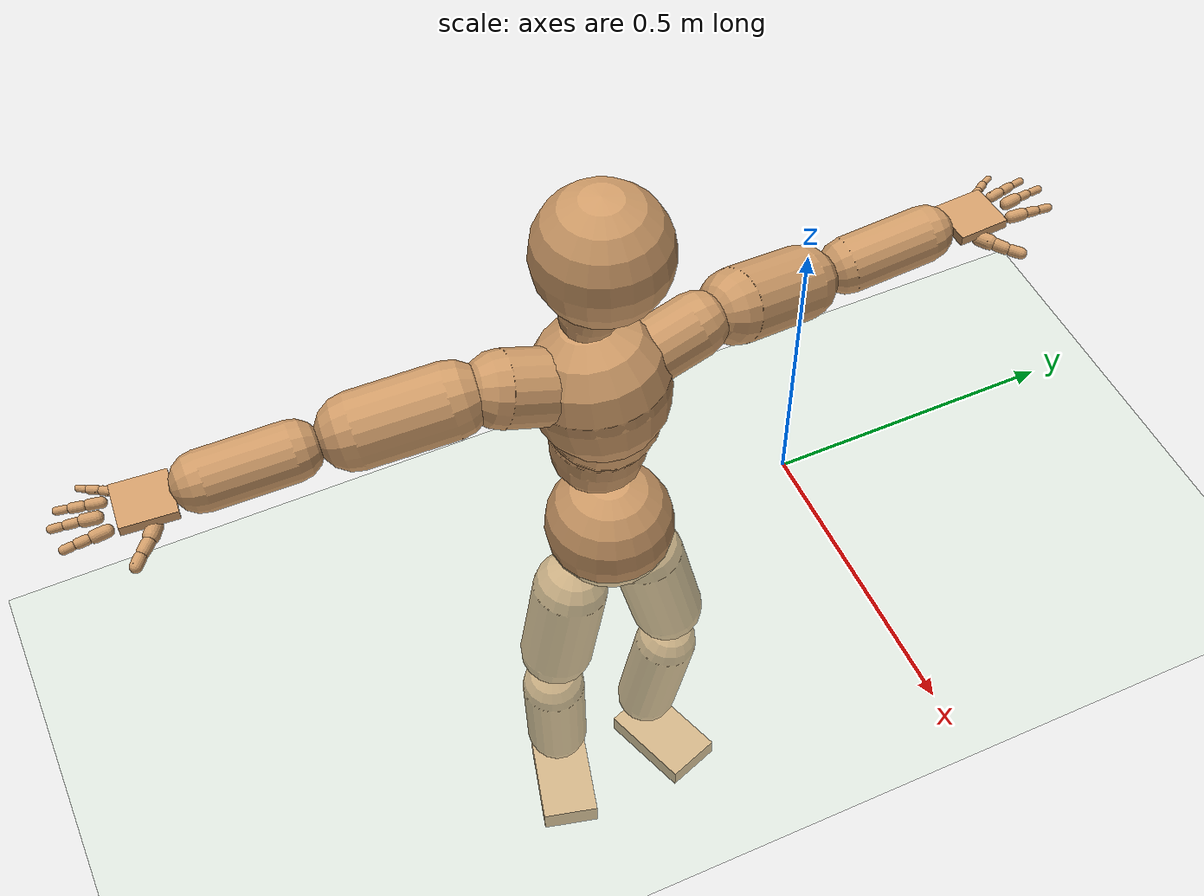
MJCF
<mujoco model="humanoid">
  <compiler coordinate="local" angle="radian"/>
  <default>
    <joint damping="0.0" armature="0.01" stiffness="0.0" limited="true"/>
    <geom conaffinity="1" condim="3" contype="7" margin="0.001" rgba="0.8 0.6 .4 1"/>
  </default>
  <asset>
    <texture type="skybox" builtin="gradient" rgb1=".4 .5 .6" rgb2="0 0 0" width="100" height="100"/>
    <texture builtin="flat" height="1278" mark="cross" markrgb="1 1 1" name="texgeom" random="0.01" rgb1="0.8 0.6 0.4" rgb2="0.8 0.6 0.4" type="cube" width="127"/>
    <texture builtin="checker" height="100" name="texplane" rgb1="0 0 0" rgb2="0.8 0.8 0.8" type="2d" width="100"/>
    <material name="MatPlane" reflectance="0.5" shininess="1" specular="1" texrepeat="60 60" texture="texplane"/>
    <material name="geom" texture="texgeom" texuniform="true"/>
  </asset>
  <worldbody>
    <light cutoff="100" diffuse="1 1 1" dir="-0 0 -1.3" directional="true" exponent="1" pos="0 0 1.3" specular=".1 .1 .1"/>
    <geom conaffinity="1" condim="3" name="floor" pos="0 0 0" rgba="0.8 0.9 0.8 1" size="100 100 .2" type="plane" material="MatPlane"/>
    <body name="Pelvis" pos="0.0017 -0.3273 0.0262">
      <freejoint name="Pelvis"/>
      <geom type="sphere" contype="1" conaffinity="1" density="500" size="0.1088" pos="0.0000 0.0000 0.0000" name="Pelvis"/>
      <body name="L_Hip" pos="-0.0142 0.06 -0.0852">
        <joint name="L_Hip_x" type="hinge" pos="0 0 0" axis="1 0 0" stiffness="800" damping="80" armature="0.02" range="-180.0000 180.0000"/>
        <joint name="L_Hip_y" type="hinge" pos="0 0 0" axis="0 1 0" stiffness="800" damping="80" armature="0.02" range="-180.0000 180.0000"/>
        <joint name="L_Hip_z" type="hinge" pos="0 0 0" axis="0 0 1" stiffness="800" damping="80" armature="0.02" range="-180.0000 180.0000"/>
        <geom type="capsule" contype="1" conaffinity="1" density="500" fromto="0.0014 0.0139 -0.0631 0.0055 0.0557 -0.2525" size="0.0652" name="L_Hip"/>
        <body name="L_Knee" pos="0.0069 0.0697 -0.3156">
          <joint name="L_Knee_x" type="hinge" pos="0 0 0" axis="1 0 0" stiffness="800" damping="80" armature="0.02" range="-180.0000 180.0000"/>
          <joint name="L_Knee_y" type="hinge" pos="0 0 0" axis="0 1 0" stiffness="800" damping="80" armature="0.02" range="-180.0000 180.0000"/>
          <joint name="L_Knee_z" type="hinge" pos="0 0 0" axis="0 0 1" stiffness="800" damping="80" armature="0.02" range="-180.0000 180.0000"/>
          <geom type="capsule" contype="1" conaffinity="1" density="500" fromto="-0.0073 -0.0094 -0.0702 -0.0293 -0.0376 -0.2807" size="0.0571" name="L_Knee"/>
          <body name="L_Ankle" pos="-0.0367 -0.047 -0.3508">
            <joint name="L_Ankle_x" type="hinge" pos="0 0 0" axis="1 0 0" stiffness="800" damping="80" armature="0.02" range="-180.0000 180.0000"/>
            <joint name="L_Ankle_y" type="hinge" pos="0 0 0" axis="0 1 0" stiffness="800" damping="80" armature="0.02" range="-180.0000 180.0000"/>
            <joint name="L_Ankle_z" type="hinge" pos="0 0 0" axis="0 0 1" stiffness="800" damping="80" armature="0.02" range="-180.0000 180.0000"/>
            <geom type="box" contype="1" conaffinity="1" density="500" pos="0.0618 0.0216 -0.0242" size="0.0882 0.0522 0.0195" quat="0.9859 0.0000 0.0000 0.1671" name="L_Ankle"/>
            <body name="L_Toe" pos="0.1236 0.0431 -0.0483">
              <joint name="L_Toe_x" type="hinge" pos="0 0 0" axis="1 0 0" stiffness="500" damping="50" armature="0.02" range="-180.0000 180.0000"/>
              <joint name="L_Toe_y" type="hinge" pos="0 0 0" axis="0 1 0" stiffness="500" damping="50" armature="0.02" range="-180.0000 180.0000"/>
              <joint name="L_Toe_z" type="hinge" pos="0 0 0" axis="0 0 1" stiffness="500" damping="50" armature="0.02" range="-180.0000 180.0000"/>
              <geom type="box" contype="1" conaffinity="1" density="500" pos="0.0000 0.0000 0.0269" size="0.0011 0.0025 0.0011" quat="0.9852 0.0000 0.0000 0.1716" name="L_Toe"/>
            </body>
          </body>
        </body>
      </body>
      <body name="R_Hip" pos="-0.0047 -0.0622 -0.0964">
        <joint name="R_Hip_x" type="hinge" pos="0 0 0" axis="1 0 0" stiffness="800" damping="80" armature="0.02" range="-180.0000 180.0000"/>
        <joint name="R_Hip_y" type="hinge" pos="0 0 0" axis="0 1 0" stiffness="800" damping="80" armature="0.02" range="-180.0000 180.0000"/>
        <joint name="R_Hip_z" type="hinge" pos="0 0 0" axis="0 0 1" stiffness="800" damping="80" armature="0.02" range="-180.0000 180.0000"/>
        <geom type="capsule" contype="1" conaffinity="1" density="500" fromto="-0.0005 -0.0104 -0.0602 -0.0022 -0.0418 -0.2408" size="0.0654" name="R_Hip"/>
        <body name="R_Knee" pos="-0.0027 -0.0522 -0.301">
          <joint name="R_Knee_x" type="hinge" pos="0 0 0" axis="1 0 0" stiffness="800" damping="80" armature="0.02" range="-180.0000 180.0000"/>
          <joint name="R_Knee_y" type="hinge" pos="0 0 0" axis="0 1 0" stiffness="800" damping="80" armature="0.02" range="-180.0000 180.0000"/>
          <joint name="R_Knee_z" type="hinge" pos="0 0 0" axis="0 0 1" stiffness="800" damping="80" armature="0.02" range="-180.0000 180.0000"/>
          <geom type="capsule" contype="1" conaffinity="1" density="500" fromto="-0.0074 0.0032 -0.0721 -0.0296 0.0130 -0.2885" size="0.0575" name="R_Knee"/>
          <body name="R_Ankle" pos="-0.037 0.0162 -0.3606">
            <joint name="R_Ankle_x" type="hinge" pos="0 0 0" axis="1 0 0" stiffness="800" damping="80" armature="0.02" range="-180.0000 180.0000"/>
            <joint name="R_Ankle_y" type="hinge" pos="0 0 0" axis="0 1 0" stiffness="800" damping="80" armature="0.02" range="-180.0000 180.0000"/>
            <joint name="R_Ankle_z" type="hinge" pos="0 0 0" axis="0 0 1" stiffness="800" damping="80" armature="0.02" range="-180.0000 180.0000"/>
            <geom type="box" contype="1" conaffinity="1" density="500" pos="0.0654 -0.0169 -0.0239" size="0.0882 0.0522 0.0231" quat="0.9920 0.0000 0.0000 -0.1264" name="R_Ankle"/>
            <body name="R_Toe" pos="0.1307 -0.0339 -0.0478">
              <joint name="R_Toe_x" type="hinge" pos="0 0 0" axis="1 0 0" stiffness="500" damping="50" armature="0.02" range="-180.0000 180.0000"/>
              <joint name="R_Toe_y" type="hinge" pos="0 0 0" axis="0 1 0" stiffness="500" damping="50" armature="0.02" range="-180.0000 180.0000"/>
              <joint name="R_Toe_z" type="hinge" pos="0 0 0" axis="0 0 1" stiffness="500" damping="50" armature="0.02" range="-180.0000 180.0000"/>
              <geom type="box" contype="1" conaffinity="1" density="500" pos="0.0000 0.0000 0.0231" size="0.001 0.0025 0.0011" quat="0.9931 0.0000 0.0000 -0.1175" name="R_Toe"/>
            </body>
          </body>
        </body>
      </body>
      <body name="Torso" pos="-0.0484 -0.0019 0.0963">
        <joint name="Torso_x" type="hinge" pos="0 0 0" axis="1 0 0" stiffness="1000" damping="100" armature="0.02" range="-180.0000 180.0000"/>
        <joint name="Torso_y" type="hinge" pos="0 0 0" axis="0 1 0" stiffness="1000" damping="100" armature="0.02" range="-180.0000 180.0000"/>
        <joint name="Torso_z" type="hinge" pos="0 0 0" axis="0 0 1" stiffness="1000" damping="100" armature="0.02" range="-180.0000 180.0000"/>
        <geom type="capsule" contype="1" conaffinity="1" density="500" fromto="-0.0006 0.0071 0.0758 -0.0004 0.0048 0.0505" size="0.0798" name="Torso"/>
        <body name="Spine" pos="-0.0009 0.0119 0.1263">
          <joint name="Spine_x" type="hinge" pos="0 0 0" axis="1 0 0" stiffness="1000" damping="100" armature="0.02" range="-180.0000 180.0000"/>
          <joint name="Spine_y" type="hinge" pos="0 0 0" axis="0 1 0" stiffness="1000" damping="100" armature="0.02" range="-180.0000 180.0000"/>
          <joint name="Spine_z" type="hinge" pos="0 0 0" axis="0 0 1" stiffness="1000" damping="100" armature="0.02" range="-180.0000 180.0000"/>
          <geom type="capsule" contype="1" conaffinity="1" density="500" fromto="0.0188 -0.0050 0.0304 0.0126 -0.0033 0.0202" size="0.0943" name="Spine"/>
          <body name="Chest" pos="0.0314 -0.0083 0.0506">
            <joint name="Chest_x" type="hinge" pos="0 0 0" axis="1 0 0" stiffness="1000" damping="100" armature="0.02" range="-180.0000 180.0000"/>
            <joint name="Chest_y" type="hinge" pos="0 0 0" axis="0 1 0" stiffness="1000" damping="100" armature="0.02" range="-180.0000 180.0000"/>
            <joint name="Chest_z" type="hinge" pos="0 0 0" axis="0 0 1" stiffness="1000" damping="100" armature="0.02" range="-180.0000 180.0000"/>
            <geom type="capsule" contype="1" conaffinity="1" density="500" fromto="-0.0110 -0.0043 0.0573 -0.0073 -0.0029 0.0382" size="0.1117" name="Chest"/>
            <body name="Neck" pos="-0.0373 -0.0128 0.1488">
              <joint name="Neck_x" type="hinge" pos="0 0 0" axis="1 0 0" stiffness="500" damping="50" armature="0.02" range="-180.0000 180.0000"/>
              <joint name="Neck_y" type="hinge" pos="0 0 0" axis="0 1 0" stiffness="500" damping="50" armature="0.02" range="-180.0000 180.0000"/>
              <joint name="Neck_z" type="hinge" pos="0 0 0" axis="0 0 1" stiffness="500" damping="50" armature="0.02" range="-180.0000 180.0000"/>
              <geom type="capsule" contype="1" conaffinity="1" density="500" fromto="0.0020 0.0050 0.0308 0.0082 0.0200 0.1233" size="0.0459" name="Neck"/>
              <body name="Head" pos="0.0102 0.025 0.1541">
                <joint name="Head_x" type="hinge" pos="0 0 0" axis="1 0 0" stiffness="500" damping="50" armature="0.02" range="-180.0000 180.0000"/>
                <joint name="Head_y" type="hinge" pos="0 0 0" axis="0 1 0" stiffness="500" damping="50" armature="0.02" range="-180.0000 180.0000"/>
                <joint name="Head_z" type="hinge" pos="0 0 0" axis="0 0 1" stiffness="500" damping="50" armature="0.02" range="-180.0000 180.0000"/>
                <geom type="sphere" contype="1" conaffinity="1" density="500" size="0.1069" pos="0.0000 0.0000 0.0000" name="Head"/>
              </body>
            </body>
            <body name="L_Thorax" pos="-0.0081 0.043 0.0685">
              <joint name="L_Thorax_x" type="hinge" pos="0 0 0" axis="1 0 0" stiffness="500" damping="50" armature="0.02" range="-180.0000 180.0000"/>
              <joint name="L_Thorax_y" type="hinge" pos="0 0 0" axis="0 1 0" stiffness="500" damping="50" armature="0.02" range="-180.0000 180.0000"/>
              <joint name="L_Thorax_z" type="hinge" pos="0 0 0" axis="0 0 1" stiffness="500" damping="50" armature="0.02" range="-180.0000 180.0000"/>
              <geom type="capsule" contype="1" conaffinity="1" density="500" fromto="-0.0016 0.0291 0.0082 -0.0064 0.1164 0.0328" size="0.0519" name="L_Thorax"/>
              <body name="L_Shoulder" pos="-0.008 0.1455 0.041">
                <joint name="L_Shoulder_x" type="hinge" pos="0 0 0" axis="1 0 0" stiffness="500" damping="50" armature="0.02" range="-180.0000 180.0000"/>
                <joint name="L_Shoulder_y" type="hinge" pos="0 0 0" axis="0 1 0" stiffness="500" damping="50" armature="0.02" range="-180.0000 180.0000"/>
                <joint name="L_Shoulder_z" type="hinge" pos="0 0 0" axis="0 0 1" stiffness="500" damping="50" armature="0.02" range="-180.0000 180.0000"/>
                <geom type="capsule" contype="1" conaffinity="1" density="500" fromto="-0.0114 0.0444 -0.0136 -0.0456 0.1778 -0.0544" size="0.0606" name="L_Shoulder"/>
                <body name="L_Elbow" pos="-0.057 0.2222 -0.068">
                  <joint name="L_Elbow_x" type="hinge" pos="0 0 0" axis="1 0 0" stiffness="500" damping="50" armature="0.02" range="-720.0000 720.0000"/>
                  <joint name="L_Elbow_y" type="hinge" pos="0 0 0" axis="0 1 0" stiffness="500" damping="50" armature="0.02" range="-720.0000 720.0000"/>
                  <joint name="L_Elbow_z" type="hinge" pos="0 0 0" axis="0 0 1" stiffness="500" damping="50" armature="0.02" range="-720.0000 720.0000"/>
                  <geom type="capsule" contype="1" conaffinity="1" density="500" fromto="0.0011 0.0463 0.0050 0.0045 0.1854 0.0200" size="0.0462" name="L_Elbow"/>
                  <body name="L_Wrist" pos="0.0057 0.2317 0.025">
                    <joint name="L_Wrist_x" type="hinge" pos="0 0 0" axis="1 0 0" stiffness="300" damping="30" armature="0.02" range="-180.0000 180.0000"/>
                    <joint name="L_Wrist_y" type="hinge" pos="0 0 0" axis="0 1 0" stiffness="300" damping="30" armature="0.02" range="-180.0000 180.0000"/>
                    <joint name="L_Wrist_z" type="hinge" pos="0 0 0" axis="0 0 1" stiffness="300" damping="30" armature="0.02" range="-180.0000 180.0000"/>
                    <geom type="box" contype="1" conaffinity="1" density="500" pos="-0.0024 0.0397 -0.0046" size="0.0434 0.0401 0.0085" quat="0.7277 0.0000 0.0000 -0.6859" name="L_Wrist"/>
                    <body name="L_Index1" pos="0.0234 0.0945 -0.0061">
                      <joint name="L_Index1_x" type="hinge" pos="0 0 0" axis="1 0 0" stiffness="100" damping="10" armature="0.02" range="-180.0000 180.0000"/>
                      <joint name="L_Index1_y" type="hinge" pos="0 0 0" axis="0 1 0" stiffness="100" damping="10" armature="0.02" range="-180.0000 180.0000"/>
                      <joint name="L_Index1_z" type="hinge" pos="0 0 0" axis="0 0 1" stiffness="100" damping="10" armature="0.02" range="-180.0000 180.0000"/>
                      <geom type="capsule" contype="1" conaffinity="1" density="500" fromto="0.0009 0.0064 0.0004 0.0035 0.0255 0.0014" size="0.01" name="L_Index1"/>
                      <body name="L_Index2" pos="0.0043 0.0319 0.0018">
                        <joint name="L_Index2_x" type="hinge" pos="0 0 0" axis="1 0 0" stiffness="100" damping="10" armature="0.02" range="-180.0000 180.0000"/>
                        <joint name="L_Index2_y" type="hinge" pos="0 0 0" axis="0 1 0" stiffness="100" damping="10" armature="0.02" range="-180.0000 180.0000"/>
                        <joint name="L_Index2_z" type="hinge" pos="0 0 0" axis="0 0 1" stiffness="100" damping="10" armature="0.02" range="-180.0000 180.0000"/>
                        <geom type="capsule" contype="1" conaffinity="1" density="500" fromto="-0.0000 0.0045 -0.0006 -0.0000 0.0180 -0.0022" size="0.0081" name="L_Index2"/>
                        <body name="L_Index3" pos="0 0.0225 -0.0028">
                          <joint name="L_Index3_x" type="hinge" pos="0 0 0" axis="1 0 0" stiffness="100" damping="10" armature="0.02" range="-180.0000 180.0000"/>
                          <joint name="L_Index3_y" type="hinge" pos="0 0 0" axis="0 1 0" stiffness="100" damping="10" armature="0.02" range="-180.0000 180.0000"/>
                          <joint name="L_Index3_z" type="hinge" pos="0 0 0" axis="0 0 1" stiffness="100" damping="10" armature="0.02" range="-180.0000 180.0000"/>
                          <geom type="capsule" contype="1" conaffinity="1" density="500" fromto="0.0004 0.0049 -0.0002 0.0016 0.0196 -0.0006" size="0.0069" name="L_Index3"/>
                        </body>
                      </body>
                    </body>
                    <body name="L_Middle1" pos="-0.0019 0.1018 -0.0031">
                      <joint name="L_Middle1_x" type="hinge" pos="0 0 0" axis="1 0 0" stiffness="100" damping="10" armature="0.02" range="-180.0000 180.0000"/>
                      <joint name="L_Middle1_y" type="hinge" pos="0 0 0" axis="0 1 0" stiffness="100" damping="10" armature="0.02" range="-180.0000 180.0000"/>
                      <joint name="L_Middle1_z" type="hinge" pos="0 0 0" axis="0 0 1" stiffness="100" damping="10" armature="0.02" range="-180.0000 180.0000"/>
                      <geom type="capsule" contype="1" conaffinity="1" density="500" fromto="-0.0008 0.0061 0.0001 -0.0033 0.0244 0.0004" size="0.0101" name="L_Middle1"/>
                      <body name="L_Middle2" pos="-0.0041 0.0305 0.0005">
                        <joint name="L_Middle2_x" type="hinge" pos="0 0 0" axis="1 0 0" stiffness="100" damping="10" armature="0.02" range="-180.0000 180.0000"/>
                        <joint name="L_Middle2_y" type="hinge" pos="0 0 0" axis="0 1 0" stiffness="100" damping="10" armature="0.02" range="-180.0000 180.0000"/>
                        <joint name="L_Middle2_z" type="hinge" pos="0 0 0" axis="0 0 1" stiffness="100" damping="10" armature="0.02" range="-180.0000 180.0000"/>
                        <geom type="capsule" contype="1" conaffinity="1" density="500" fromto="-0.0008 0.0046 -0.0005 -0.0033 0.0185 -0.0020" size="0.0073" name="L_Middle2"/>
                        <body name="L_Middle3" pos="-0.0041 0.0231 -0.0025">
                          <joint name="L_Middle3_x" type="hinge" pos="0 0 0" axis="1 0 0" stiffness="100" damping="10" armature="0.02" range="-180.0000 180.0000"/>
                          <joint name="L_Middle3_y" type="hinge" pos="0 0 0" axis="0 1 0" stiffness="100" damping="10" armature="0.02" range="-180.0000 180.0000"/>
                          <joint name="L_Middle3_z" type="hinge" pos="0 0 0" axis="0 0 1" stiffness="100" damping="10" armature="0.02" range="-180.0000 180.0000"/>
                          <geom type="capsule" contype="1" conaffinity="1" density="500" fromto="-0.0004 0.0050 -0.0001 -0.0017 0.0201 -0.0004" size="0.0064" name="L_Middle3"/>
                        </body>
                      </body>
                    </body>
                    <body name="L_Pinky1" pos="-0.046 0.0761 -0.0123">
                      <joint name="L_Pinky1_x" type="hinge" pos="0 0 0" axis="1 0 0" stiffness="100" damping="10" armature="0.02" range="-180.0000 180.0000"/>
                      <joint name="L_Pinky1_y" type="hinge" pos="0 0 0" axis="0 1 0" stiffness="100" damping="10" armature="0.02" range="-180.0000 180.0000"/>
                      <joint name="L_Pinky1_z" type="hinge" pos="0 0 0" axis="0 0 1" stiffness="100" damping="10" armature="0.02" range="-180.0000 180.0000"/>
                      <geom type="capsule" contype="1" conaffinity="1" density="500" fromto="-0.0025 0.0033 -0.0004 -0.0099 0.0131 -0.0016" size="0.0073" name="L_Pinky1"/>
                      <body name="L_Pinky2" pos="-0.0124 0.0163 -0.002">
                        <joint name="L_Pinky2_x" type="hinge" pos="0 0 0" axis="1 0 0" stiffness="100" damping="10" armature="0.02" range="-180.0000 180.0000"/>
                        <joint name="L_Pinky2_y" type="hinge" pos="0 0 0" axis="0 1 0" stiffness="100" damping="10" armature="0.02" range="-180.0000 180.0000"/>
                        <joint name="L_Pinky2_z" type="hinge" pos="0 0 0" axis="0 0 1" stiffness="100" damping="10" armature="0.02" range="-180.0000 180.0000"/>
                        <geom type="capsule" contype="1" conaffinity="1" density="500" fromto="-0.0022 0.0032 -0.0005 -0.0089 0.0128 -0.0020" size="0.007" name="L_Pinky2"/>
                        <body name="L_Pinky3" pos="-0.0112 0.0161 -0.0024">
                          <joint name="L_Pinky3_x" type="hinge" pos="0 0 0" axis="1 0 0" stiffness="100" damping="10" armature="0.02" range="-180.0000 180.0000"/>
                          <joint name="L_Pinky3_y" type="hinge" pos="0 0 0" axis="0 1 0" stiffness="100" damping="10" armature="0.02" range="-180.0000 180.0000"/>
                          <joint name="L_Pinky3_z" type="hinge" pos="0 0 0" axis="0 0 1" stiffness="100" damping="10" armature="0.02" range="-180.0000 180.0000"/>
                          <geom type="capsule" contype="1" conaffinity="1" density="500" fromto="-0.0018 0.0036 -0.0001 -0.0073 0.0144 -0.0004" size="0.0052" name="L_Pinky3"/>
                        </body>
                      </body>
                    </body>
                    <body name="L_Ring1" pos="-0.0277 0.0896 -0.0062">
                      <joint name="L_Ring1_x" type="hinge" pos="0 0 0" axis="1 0 0" stiffness="100" damping="10" armature="0.02" range="-180.0000 180.0000"/>
                      <joint name="L_Ring1_y" type="hinge" pos="0 0 0" axis="0 1 0" stiffness="100" damping="10" armature="0.02" range="-180.0000 180.0000"/>
                      <joint name="L_Ring1_z" type="hinge" pos="0 0 0" axis="0 0 1" stiffness="100" damping="10" armature="0.02" range="-180.0000 180.0000"/>
                      <geom type="capsule" contype="1" conaffinity="1" density="500" fromto="-0.0010 0.0057 0.0001 -0.0039 0.0228 0.0006" size="0.0086" name="L_Ring1"/>
                      <body name="L_Ring2" pos="-0.0048 0.0285 0.0007">
                        <joint name="L_Ring2_x" type="hinge" pos="0 0 0" axis="1 0 0" stiffness="100" damping="10" armature="0.02" range="-180.0000 180.0000"/>
                        <joint name="L_Ring2_y" type="hinge" pos="0 0 0" axis="0 1 0" stiffness="100" damping="10" armature="0.02" range="-180.0000 180.0000"/>
                        <joint name="L_Ring2_z" type="hinge" pos="0 0 0" axis="0 0 1" stiffness="100" damping="10" armature="0.02" range="-180.0000 180.0000"/>
                        <geom type="capsule" contype="1" conaffinity="1" density="500" fromto="-0.0013 0.0046 -0.0005 -0.0052 0.0184 -0.0020" size="0.0079" name="L_Ring2"/>
                        <body name="L_Ring3" pos="-0.0065 0.023 -0.0025">
                          <joint name="L_Ring3_x" type="hinge" pos="0 0 0" axis="1 0 0" stiffness="100" damping="10" armature="0.02" range="-180.0000 180.0000"/>
                          <joint name="L_Ring3_y" type="hinge" pos="0 0 0" axis="0 1 0" stiffness="100" damping="10" armature="0.02" range="-180.0000 180.0000"/>
                          <joint name="L_Ring3_z" type="hinge" pos="0 0 0" axis="0 0 1" stiffness="100" damping="10" armature="0.02" range="-180.0000 180.0000"/>
                          <geom type="capsule" contype="1" conaffinity="1" density="500" fromto="-0.0009 0.0050 -0.0001 -0.0036 0.0200 -0.0004" size="0.006" name="L_Ring3"/>
                        </body>
                      </body>
                    </body>
                    <body name="L_Thumb1" pos="0.0286 0.0347 -0.0186">
                      <joint name="L_Thumb1_x" type="hinge" pos="0 0 0" axis="1 0 0" stiffness="100" damping="10" armature="0.02" range="-180.0000 180.0000"/>
                      <joint name="L_Thumb1_y" type="hinge" pos="0 0 0" axis="0 1 0" stiffness="100" damping="10" armature="0.02" range="-180.0000 180.0000"/>
                      <joint name="L_Thumb1_z" type="hinge" pos="0 0 0" axis="0 0 1" stiffness="100" damping="10" armature="0.02" range="-180.0000 180.0000"/>
                      <geom type="capsule" contype="1" conaffinity="1" density="500" fromto="0.0054 0.0030 0.0005 0.0215 0.0122 0.0021" size="0.0127" name="L_Thumb1"/>
                      <body name="L_Thumb2" pos="0.0269 0.0152 0.0026">
                        <joint name="L_Thumb2_x" type="hinge" pos="0 0 0" axis="1 0 0" stiffness="100" damping="10" armature="0.02" range="-180.0000 180.0000"/>
                        <joint name="L_Thumb2_y" type="hinge" pos="0 0 0" axis="0 1 0" stiffness="100" damping="10" armature="0.02" range="-180.0000 180.0000"/>
                        <joint name="L_Thumb2_z" type="hinge" pos="0 0 0" axis="0 0 1" stiffness="100" damping="10" armature="0.02" range="-180.0000 180.0000"/>
                        <geom type="capsule" contype="1" conaffinity="1" density="500" fromto="0.0033 0.0037 -0.0010 0.0133 0.0147 -0.0041" size="0.0103" name="L_Thumb2"/>
                        <body name="L_Thumb3" pos="0.0167 0.0184 -0.0051">
                          <joint name="L_Thumb3_x" type="hinge" pos="0 0 0" axis="1 0 0" stiffness="100" damping="10" armature="0.02" range="-180.0000 180.0000"/>
                          <joint name="L_Thumb3_y" type="hinge" pos="0 0 0" axis="0 1 0" stiffness="100" damping="10" armature="0.02" range="-180.0000 180.0000"/>
                          <joint name="L_Thumb3_z" type="hinge" pos="0 0 0" axis="0 0 1" stiffness="100" damping="10" armature="0.02" range="-180.0000 180.0000"/>
                          <geom type="capsule" contype="1" conaffinity="1" density="500" fromto="0.0037 0.0041 -0.0006 0.0149 0.0163 -0.0025" size="0.0095" name="L_Thumb3"/>
                        </body>
                      </body>
                    </body>
                  </body>
                </body>
              </body>
            </body>
            <body name="R_Thorax" pos="-0.0096 -0.0517 0.0691">
              <joint name="R_Thorax_x" type="hinge" pos="0 0 0" axis="1 0 0" stiffness="500" damping="50" armature="0.02" range="-180.0000 180.0000"/>
              <joint name="R_Thorax_y" type="hinge" pos="0 0 0" axis="0 1 0" stiffness="500" damping="50" armature="0.02" range="-180.0000 180.0000"/>
              <joint name="R_Thorax_z" type="hinge" pos="0 0 0" axis="0 0 1" stiffness="500" damping="50" armature="0.02" range="-180.0000 180.0000"/>
              <geom type="capsule" contype="1" conaffinity="1" density="500" fromto="-0.0026 -0.0266 0.0081 -0.0102 -0.1063 0.0323" size="0.0608" name="R_Thorax"/>
              <body name="R_Shoulder" pos="-0.0128 -0.1329 0.0404">
                <joint name="R_Shoulder_x" type="hinge" pos="0 0 0" axis="1 0 0" stiffness="500" damping="50" armature="0.02" range="-180.0000 180.0000"/>
                <joint name="R_Shoulder_y" type="hinge" pos="0 0 0" axis="0 1 0" stiffness="500" damping="50" armature="0.02" range="-180.0000 180.0000"/>
                <joint name="R_Shoulder_z" type="hinge" pos="0 0 0" axis="0 0 1" stiffness="500" damping="50" armature="0.02" range="-180.0000 180.0000"/>
                <geom type="capsule" contype="1" conaffinity="1" density="500" fromto="-0.0072 -0.0478 -0.0069 -0.0289 -0.1910 -0.0278" size="0.0601" name="R_Shoulder"/>
                <body name="R_Elbow" pos="-0.0361 -0.2388 -0.0347">
                  <joint name="R_Elbow_x" type="hinge" pos="0 0 0" axis="1 0 0" stiffness="500" damping="50" armature="0.02" range="-720.0000 720.0000"/>
                  <joint name="R_Elbow_y" type="hinge" pos="0 0 0" axis="0 1 0" stiffness="500" damping="50" armature="0.02" range="-720.0000 720.0000"/>
                  <joint name="R_Elbow_z" type="hinge" pos="0 0 0" axis="0 0 1" stiffness="500" damping="50" armature="0.02" range="-720.0000 720.0000"/>
                  <geom type="capsule" contype="1" conaffinity="1" density="500" fromto="-0.0016 -0.0453 -0.0009 -0.0063 -0.1813 -0.0035" size="0.047" name="R_Elbow"/>
                  <body name="R_Wrist" pos="-0.0078 -0.2266 -0.0043">
                    <joint name="R_Wrist_x" type="hinge" pos="0 0 0" axis="1 0 0" stiffness="300" damping="30" armature="0.02" range="-180.0000 180.0000"/>
                    <joint name="R_Wrist_y" type="hinge" pos="0 0 0" axis="0 1 0" stiffness="300" damping="30" armature="0.02" range="-180.0000 180.0000"/>
                    <joint name="R_Wrist_z" type="hinge" pos="0 0 0" axis="0 0 1" stiffness="300" damping="30" armature="0.02" range="-180.0000 180.0000"/>
                    <geom type="box" contype="1" conaffinity="1" density="500" pos="-0.0029 -0.0394 -0.0066" size="0.0434 0.0412 0.0086" quat="0.7328 0.0000 0.0000 0.6805" name="R_Wrist"/>
                    <body name="R_Index1" pos="0.0223 -0.0941 -0.01">
                      <joint name="R_Index1_x" type="hinge" pos="0 0 0" axis="1 0 0" stiffness="100" damping="10" armature="0.02" range="-180.0000 180.0000"/>
                      <joint name="R_Index1_y" type="hinge" pos="0 0 0" axis="0 1 0" stiffness="100" damping="10" armature="0.02" range="-180.0000 180.0000"/>
                      <joint name="R_Index1_z" type="hinge" pos="0 0 0" axis="0 0 1" stiffness="100" damping="10" armature="0.02" range="-180.0000 180.0000"/>
                      <geom type="capsule" contype="1" conaffinity="1" density="500" fromto="0.0009 -0.0064 0.0004 0.0035 -0.0255 0.0014" size="0.01" name="R_Index1"/>
                      <body name="R_Index2" pos="0.0043 -0.0319 0.0018">
                        <joint name="R_Index2_x" type="hinge" pos="0 0 0" axis="1 0 0" stiffness="100" damping="10" armature="0.02" range="-180.0000 180.0000"/>
                        <joint name="R_Index2_y" type="hinge" pos="0 0 0" axis="0 1 0" stiffness="100" damping="10" armature="0.02" range="-180.0000 180.0000"/>
                        <joint name="R_Index2_z" type="hinge" pos="0 0 0" axis="0 0 1" stiffness="100" damping="10" armature="0.02" range="-180.0000 180.0000"/>
                        <geom type="capsule" contype="1" conaffinity="1" density="500" fromto="-0.0000 -0.0045 -0.0006 -0.0000 -0.0180 -0.0022" size="0.0081" name="R_Index2"/>
                        <body name="R_Index3" pos="0 -0.0225 -0.0028">
                          <joint name="R_Index3_x" type="hinge" pos="0 0 0" axis="1 0 0" stiffness="100" damping="10" armature="0.02" range="-180.0000 180.0000"/>
                          <joint name="R_Index3_y" type="hinge" pos="0 0 0" axis="0 1 0" stiffness="100" damping="10" armature="0.02" range="-180.0000 180.0000"/>
                          <joint name="R_Index3_z" type="hinge" pos="0 0 0" axis="0 0 1" stiffness="100" damping="10" armature="0.02" range="-180.0000 180.0000"/>
                          <geom type="capsule" contype="1" conaffinity="1" density="500" fromto="0.0004 -0.0041 -0.0002 0.0016 -0.0164 -0.0006" size="0.0072" name="R_Index3"/>
                        </body>
                      </body>
                    </body>
                    <body name="R_Middle1" pos="-0.003 -0.1014 -0.007">
                      <joint name="R_Middle1_x" type="hinge" pos="0 0 0" axis="1 0 0" stiffness="100" damping="10" armature="0.02" range="-180.0000 180.0000"/>
                      <joint name="R_Middle1_y" type="hinge" pos="0 0 0" axis="0 1 0" stiffness="100" damping="10" armature="0.02" range="-180.0000 180.0000"/>
                      <joint name="R_Middle1_z" type="hinge" pos="0 0 0" axis="0 0 1" stiffness="100" damping="10" armature="0.02" range="-180.0000 180.0000"/>
                      <geom type="capsule" contype="1" conaffinity="1" density="500" fromto="-0.0008 -0.0061 0.0001 -0.0033 -0.0244 0.0004" size="0.0101" name="R_Middle1"/>
                      <body name="R_Middle2" pos="-0.0041 -0.0305 0.0005">
                        <joint name="R_Middle2_x" type="hinge" pos="0 0 0" axis="1 0 0" stiffness="100" damping="10" armature="0.02" range="-180.0000 180.0000"/>
                        <joint name="R_Middle2_y" type="hinge" pos="0 0 0" axis="0 1 0" stiffness="100" damping="10" armature="0.02" range="-180.0000 180.0000"/>
                        <joint name="R_Middle2_z" type="hinge" pos="0 0 0" axis="0 0 1" stiffness="100" damping="10" armature="0.02" range="-180.0000 180.0000"/>
                        <geom type="capsule" contype="1" conaffinity="1" density="500" fromto="-0.0008 -0.0046 -0.0005 -0.0033 -0.0185 -0.0020" size="0.0074" name="R_Middle2"/>
                        <body name="R_Middle3" pos="-0.0041 -0.0231 -0.0025">
                          <joint name="R_Middle3_x" type="hinge" pos="0 0 0" axis="1 0 0" stiffness="100" damping="10" armature="0.02" range="-180.0000 180.0000"/>
                          <joint name="R_Middle3_y" type="hinge" pos="0 0 0" axis="0 1 0" stiffness="100" damping="10" armature="0.02" range="-180.0000 180.0000"/>
                          <joint name="R_Middle3_z" type="hinge" pos="0 0 0" axis="0 0 1" stiffness="100" damping="10" armature="0.02" range="-180.0000 180.0000"/>
                          <geom type="capsule" contype="1" conaffinity="1" density="500" fromto="-0.0004 -0.0042 -0.0001 -0.0017 -0.0169 -0.0004" size="0.0067" name="R_Middle3"/>
                        </body>
                      </body>
                    </body>
                    <body name="R_Pinky1" pos="-0.0471 -0.0756 -0.0162">
                      <joint name="R_Pinky1_x" type="hinge" pos="0 0 0" axis="1 0 0" stiffness="100" damping="10" armature="0.02" range="-180.0000 180.0000"/>
                      <joint name="R_Pinky1_y" type="hinge" pos="0 0 0" axis="0 1 0" stiffness="100" damping="10" armature="0.02" range="-180.0000 180.0000"/>
                      <joint name="R_Pinky1_z" type="hinge" pos="0 0 0" axis="0 0 1" stiffness="100" damping="10" armature="0.02" range="-180.0000 180.0000"/>
                      <geom type="capsule" contype="1" conaffinity="1" density="500" fromto="-0.0025 -0.0033 -0.0004 -0.0099 -0.0131 -0.0016" size="0.0073" name="R_Pinky1"/>
                      <body name="R_Pinky2" pos="-0.0124 -0.0163 -0.002">
                        <joint name="R_Pinky2_x" type="hinge" pos="0 0 0" axis="1 0 0" stiffness="100" damping="10" armature="0.02" range="-180.0000 180.0000"/>
                        <joint name="R_Pinky2_y" type="hinge" pos="0 0 0" axis="0 1 0" stiffness="100" damping="10" armature="0.02" range="-180.0000 180.0000"/>
                        <joint name="R_Pinky2_z" type="hinge" pos="0 0 0" axis="0 0 1" stiffness="100" damping="10" armature="0.02" range="-180.0000 180.0000"/>
                        <geom type="capsule" contype="1" conaffinity="1" density="500" fromto="-0.0022 -0.0032 -0.0005 -0.0089 -0.0128 -0.0020" size="0.007" name="R_Pinky2"/>
                        <body name="R_Pinky3" pos="-0.0112 -0.0161 -0.0024">
                          <joint name="R_Pinky3_x" type="hinge" pos="0 0 0" axis="1 0 0" stiffness="100" damping="10" armature="0.02" range="-180.0000 180.0000"/>
                          <joint name="R_Pinky3_y" type="hinge" pos="0 0 0" axis="0 1 0" stiffness="100" damping="10" armature="0.02" range="-180.0000 180.0000"/>
                          <joint name="R_Pinky3_z" type="hinge" pos="0 0 0" axis="0 0 1" stiffness="100" damping="10" armature="0.02" range="-180.0000 180.0000"/>
                          <geom type="capsule" contype="1" conaffinity="1" density="500" fromto="-0.0018 -0.0028 -0.0001 -0.0073 -0.0112 -0.0004" size="0.0054" name="R_Pinky3"/>
                        </body>
                      </body>
                    </body>
                    <body name="R_Ring1" pos="-0.0288 -0.0891 -0.01">
                      <joint name="R_Ring1_x" type="hinge" pos="0 0 0" axis="1 0 0" stiffness="100" damping="10" armature="0.02" range="-180.0000 180.0000"/>
                      <joint name="R_Ring1_y" type="hinge" pos="0 0 0" axis="0 1 0" stiffness="100" damping="10" armature="0.02" range="-180.0000 180.0000"/>
                      <joint name="R_Ring1_z" type="hinge" pos="0 0 0" axis="0 0 1" stiffness="100" damping="10" armature="0.02" range="-180.0000 180.0000"/>
                      <geom type="capsule" contype="1" conaffinity="1" density="500" fromto="-0.0010 -0.0057 0.0001 -0.0039 -0.0228 0.0006" size="0.0086" name="R_Ring1"/>
                      <body name="R_Ring2" pos="-0.0048 -0.0285 0.0007">
                        <joint name="R_Ring2_x" type="hinge" pos="0 0 0" axis="1 0 0" stiffness="100" damping="10" armature="0.02" range="-180.0000 180.0000"/>
                        <joint name="R_Ring2_y" type="hinge" pos="0 0 0" axis="0 1 0" stiffness="100" damping="10" armature="0.02" range="-180.0000 180.0000"/>
                        <joint name="R_Ring2_z" type="hinge" pos="0 0 0" axis="0 0 1" stiffness="100" damping="10" armature="0.02" range="-180.0000 180.0000"/>
                        <geom type="capsule" contype="1" conaffinity="1" density="500" fromto="-0.0013 -0.0046 -0.0005 -0.0052 -0.0184 -0.0020" size="0.0079" name="R_Ring2"/>
                        <body name="R_Ring3" pos="-0.0065 -0.023 -0.0025">
                          <joint name="R_Ring3_x" type="hinge" pos="0 0 0" axis="1 0 0" stiffness="100" damping="10" armature="0.02" range="-180.0000 180.0000"/>
                          <joint name="R_Ring3_y" type="hinge" pos="0 0 0" axis="0 1 0" stiffness="100" damping="10" armature="0.02" range="-180.0000 180.0000"/>
                          <joint name="R_Ring3_z" type="hinge" pos="0 0 0" axis="0 0 1" stiffness="100" damping="10" armature="0.02" range="-180.0000 180.0000"/>
                          <geom type="capsule" contype="1" conaffinity="1" density="500" fromto="-0.0009 -0.0042 -0.0001 -0.0036 -0.0168 -0.0004" size="0.0063" name="R_Ring3"/>
                        </body>
                      </body>
                    </body>
                    <body name="R_Thumb1" pos="0.0275 -0.0342 -0.0225">
                      <joint name="R_Thumb1_x" type="hinge" pos="0 0 0" axis="1 0 0" stiffness="100" damping="10" armature="0.02" range="-180.0000 180.0000"/>
                      <joint name="R_Thumb1_y" type="hinge" pos="0 0 0" axis="0 1 0" stiffness="100" damping="10" armature="0.02" range="-180.0000 180.0000"/>
                      <joint name="R_Thumb1_z" type="hinge" pos="0 0 0" axis="0 0 1" stiffness="100" damping="10" armature="0.02" range="-180.0000 180.0000"/>
                      <geom type="capsule" contype="1" conaffinity="1" density="500" fromto="0.0054 -0.0030 0.0005 0.0215 -0.0122 0.0021" size="0.0127" name="R_Thumb1"/>
                      <body name="R_Thumb2" pos="0.0269 -0.0152 0.0026">
                        <joint name="R_Thumb2_x" type="hinge" pos="0 0 0" axis="1 0 0" stiffness="100" damping="10" armature="0.02" range="-180.0000 180.0000"/>
                        <joint name="R_Thumb2_y" type="hinge" pos="0 0 0" axis="0 1 0" stiffness="100" damping="10" armature="0.02" range="-180.0000 180.0000"/>
                        <joint name="R_Thumb2_z" type="hinge" pos="0 0 0" axis="0 0 1" stiffness="100" damping="10" armature="0.02" range="-180.0000 180.0000"/>
                        <geom type="capsule" contype="1" conaffinity="1" density="500" fromto="0.0033 -0.0037 -0.0010 0.0133 -0.0147 -0.0041" size="0.0103" name="R_Thumb2"/>
                        <body name="R_Thumb3" pos="0.0167 -0.0184 -0.0051">
                          <joint name="R_Thumb3_x" type="hinge" pos="0 0 0" axis="1 0 0" stiffness="100" damping="10" armature="0.02" range="-180.0000 180.0000"/>
                          <joint name="R_Thumb3_y" type="hinge" pos="0 0 0" axis="0 1 0" stiffness="100" damping="10" armature="0.02" range="-180.0000 180.0000"/>
                          <joint name="R_Thumb3_z" type="hinge" pos="0 0 0" axis="0 0 1" stiffness="100" damping="10" armature="0.02" range="-180.0000 180.0000"/>
                          <geom type="capsule" contype="1" conaffinity="1" density="500" fromto="0.0037 -0.0033 -0.0006 0.0149 -0.0131 -0.0025" size="0.0097" name="R_Thumb3"/>
                        </body>
                      </body>
                    </body>
                  </body>
                </body>
              </body>
            </body>
          </body>
        </body>
      </body>
    </body>
  </worldbody>
  <actuator>
    <motor name="L_Hip_x" joint="L_Hip_x" gear="500"/>
    <motor name="L_Hip_y" joint="L_Hip_y" gear="500"/>
    <motor name="L_Hip_z" joint="L_Hip_z" gear="500"/>
    <motor name="L_Knee_x" joint="L_Knee_x" gear="500"/>
    <motor name="L_Knee_y" joint="L_Knee_y" gear="500"/>
    <motor name="L_Knee_z" joint="L_Knee_z" gear="500"/>
    <motor name="L_Ankle_x" joint="L_Ankle_x" gear="500"/>
    <motor name="L_Ankle_y" joint="L_Ankle_y" gear="500"/>
    <motor name="L_Ankle_z" joint="L_Ankle_z" gear="500"/>
    <motor name="L_Toe_x" joint="L_Toe_x" gear="500"/>
    <motor name="L_Toe_y" joint="L_Toe_y" gear="500"/>
    <motor name="L_Toe_z" joint="L_Toe_z" gear="500"/>
    <motor name="R_Hip_x" joint="R_Hip_x" gear="500"/>
    <motor name="R_Hip_y" joint="R_Hip_y" gear="500"/>
    <motor name="R_Hip_z" joint="R_Hip_z" gear="500"/>
    <motor name="R_Knee_x" joint="R_Knee_x" gear="500"/>
    <motor name="R_Knee_y" joint="R_Knee_y" gear="500"/>
    <motor name="R_Knee_z" joint="R_Knee_z" gear="500"/>
    <motor name="R_Ankle_x" joint="R_Ankle_x" gear="500"/>
    <motor name="R_Ankle_y" joint="R_Ankle_y" gear="500"/>
    <motor name="R_Ankle_z" joint="R_Ankle_z" gear="500"/>
    <motor name="R_Toe_x" joint="R_Toe_x" gear="500"/>
    <motor name="R_Toe_y" joint="R_Toe_y" gear="500"/>
    <motor name="R_Toe_z" joint="R_Toe_z" gear="500"/>
    <motor name="Torso_x" joint="Torso_x" gear="500"/>
    <motor name="Torso_y" joint="Torso_y" gear="500"/>
    <motor name="Torso_z" joint="Torso_z" gear="500"/>
    <motor name="Spine_x" joint="Spine_x" gear="500"/>
    <motor name="Spine_y" joint="Spine_y" gear="500"/>
    <motor name="Spine_z" joint="Spine_z" gear="500"/>
    <motor name="Chest_x" joint="Chest_x" gear="500"/>
    <motor name="Chest_y" joint="Chest_y" gear="500"/>
    <motor name="Chest_z" joint="Chest_z" gear="500"/>
    <motor name="Neck_x" joint="Neck_x" gear="500"/>
    <motor name="Neck_y" joint="Neck_y" gear="500"/>
    <motor name="Neck_z" joint="Neck_z" gear="500"/>
    <motor name="Head_x" joint="Head_x" gear="500"/>
    <motor name="Head_y" joint="Head_y" gear="500"/>
    <motor name="Head_z" joint="Head_z" gear="500"/>
    <motor name="L_Thorax_x" joint="L_Thorax_x" gear="500"/>
    <motor name="L_Thorax_y" joint="L_Thorax_y" gear="500"/>
    <motor name="L_Thorax_z" joint="L_Thorax_z" gear="500"/>
    <motor name="L_Shoulder_x" joint="L_Shoulder_x" gear="500"/>
    <motor name="L_Shoulder_y" joint="L_Shoulder_y" gear="500"/>
    <motor name="L_Shoulder_z" joint="L_Shoulder_z" gear="500"/>
    <motor name="L_Elbow_x" joint="L_Elbow_x" gear="500"/>
    <motor name="L_Elbow_y" joint="L_Elbow_y" gear="500"/>
    <motor name="L_Elbow_z" joint="L_Elbow_z" gear="500"/>
    <motor name="L_Wrist_x" joint="L_Wrist_x" gear="500"/>
    <motor name="L_Wrist_y" joint="L_Wrist_y" gear="500"/>
    <motor name="L_Wrist_z" joint="L_Wrist_z" gear="500"/>
    <motor name="L_Index1_x" joint="L_Index1_x" gear="500"/>
    <motor name="L_Index1_y" joint="L_Index1_y" gear="500"/>
    <motor name="L_Index1_z" joint="L_Index1_z" gear="500"/>
    <motor name="L_Index2_x" joint="L_Index2_x" gear="500"/>
    <motor name="L_Index2_y" joint="L_Index2_y" gear="500"/>
    <motor name="L_Index2_z" joint="L_Index2_z" gear="500"/>
    <motor name="L_Index3_x" joint="L_Index3_x" gear="500"/>
    <motor name="L_Index3_y" joint="L_Index3_y" gear="500"/>
    <motor name="L_Index3_z" joint="L_Index3_z" gear="500"/>
    <motor name="L_Middle1_x" joint="L_Middle1_x" gear="500"/>
    <motor name="L_Middle1_y" joint="L_Middle1_y" gear="500"/>
    <motor name="L_Middle1_z" joint="L_Middle1_z" gear="500"/>
    <motor name="L_Middle2_x" joint="L_Middle2_x" gear="500"/>
    <motor name="L_Middle2_y" joint="L_Middle2_y" gear="500"/>
    <motor name="L_Middle2_z" joint="L_Middle2_z" gear="500"/>
    <motor name="L_Middle3_x" joint="L_Middle3_x" gear="500"/>
    <motor name="L_Middle3_y" joint="L_Middle3_y" gear="500"/>
    <motor name="L_Middle3_z" joint="L_Middle3_z" gear="500"/>
    <motor name="L_Pinky1_x" joint="L_Pinky1_x" gear="500"/>
    <motor name="L_Pinky1_y" joint="L_Pinky1_y" gear="500"/>
    <motor name="L_Pinky1_z" joint="L_Pinky1_z" gear="500"/>
    <motor name="L_Pinky2_x" joint="L_Pinky2_x" gear="500"/>
    <motor name="L_Pinky2_y" joint="L_Pinky2_y" gear="500"/>
    <motor name="L_Pinky2_z" joint="L_Pinky2_z" gear="500"/>
    <motor name="L_Pinky3_x" joint="L_Pinky3_x" gear="500"/>
    <motor name="L_Pinky3_y" joint="L_Pinky3_y" gear="500"/>
    <motor name="L_Pinky3_z" joint="L_Pinky3_z" gear="500"/>
    <motor name="L_Ring1_x" joint="L_Ring1_x" gear="500"/>
    <motor name="L_Ring1_y" joint="L_Ring1_y" gear="500"/>
    <motor name="L_Ring1_z" joint="L_Ring1_z" gear="500"/>
    <motor name="L_Ring2_x" joint="L_Ring2_x" gear="500"/>
    <motor name="L_Ring2_y" joint="L_Ring2_y" gear="500"/>
    <motor name="L_Ring2_z" joint="L_Ring2_z" gear="500"/>
    <motor name="L_Ring3_x" joint="L_Ring3_x" gear="500"/>
    <motor name="L_Ring3_y" joint="L_Ring3_y" gear="500"/>
    <motor name="L_Ring3_z" joint="L_Ring3_z" gear="500"/>
    <motor name="L_Thumb1_x" joint="L_Thumb1_x" gear="500"/>
    <motor name="L_Thumb1_y" joint="L_Thumb1_y" gear="500"/>
    <motor name="L_Thumb1_z" joint="L_Thumb1_z" gear="500"/>
    <motor name="L_Thumb2_x" joint="L_Thumb2_x" gear="500"/>
    <motor name="L_Thumb2_y" joint="L_Thumb2_y" gear="500"/>
    <motor name="L_Thumb2_z" joint="L_Thumb2_z" gear="500"/>
    <motor name="L_Thumb3_x" joint="L_Thumb3_x" gear="500"/>
    <motor name="L_Thumb3_y" joint="L_Thumb3_y" gear="500"/>
    <motor name="L_Thumb3_z" joint="L_Thumb3_z" gear="500"/>
    <motor name="R_Thorax_x" joint="R_Thorax_x" gear="500"/>
    <motor name="R_Thorax_y" joint="R_Thorax_y" gear="500"/>
    <motor name="R_Thorax_z" joint="R_Thorax_z" gear="500"/>
    <motor name="R_Shoulder_x" joint="R_Shoulder_x" gear="500"/>
    <motor name="R_Shoulder_y" joint="R_Shoulder_y" gear="500"/>
    <motor name="R_Shoulder_z" joint="R_Shoulder_z" gear="500"/>
    <motor name="R_Elbow_x" joint="R_Elbow_x" gear="500"/>
    <motor name="R_Elbow_y" joint="R_Elbow_y" gear="500"/>
    <motor name="R_Elbow_z" joint="R_Elbow_z" gear="500"/>
    <motor name="R_Wrist_x" joint="R_Wrist_x" gear="500"/>
    <motor name="R_Wrist_y" joint="R_Wrist_y" gear="500"/>
    <motor name="R_Wrist_z" joint="R_Wrist_z" gear="500"/>
    <motor name="R_Index1_x" joint="R_Index1_x" gear="500"/>
    <motor name="R_Index1_y" joint="R_Index1_y" gear="500"/>
    <motor name="R_Index1_z" joint="R_Index1_z" gear="500"/>
    <motor name="R_Index2_x" joint="R_Index2_x" gear="500"/>
    <motor name="R_Index2_y" joint="R_Index2_y" gear="500"/>
    <motor name="R_Index2_z" joint="R_Index2_z" gear="500"/>
    <motor name="R_Index3_x" joint="R_Index3_x" gear="500"/>
    <motor name="R_Index3_y" joint="R_Index3_y" gear="500"/>
    <motor name="R_Index3_z" joint="R_Index3_z" gear="500"/>
    <motor name="R_Middle1_x" joint="R_Middle1_x" gear="500"/>
    <motor name="R_Middle1_y" joint="R_Middle1_y" gear="500"/>
    <motor name="R_Middle1_z" joint="R_Middle1_z" gear="500"/>
    <motor name="R_Middle2_x" joint="R_Middle2_x" gear="500"/>
    <motor name="R_Middle2_y" joint="R_Middle2_y" gear="500"/>
    <motor name="R_Middle2_z" joint="R_Middle2_z" gear="500"/>
    <motor name="R_Middle3_x" joint="R_Middle3_x" gear="500"/>
    <motor name="R_Middle3_y" joint="R_Middle3_y" gear="500"/>
    <motor name="R_Middle3_z" joint="R_Middle3_z" gear="500"/>
    <motor name="R_Pinky1_x" joint="R_Pinky1_x" gear="500"/>
    <motor name="R_Pinky1_y" joint="R_Pinky1_y" gear="500"/>
    <motor name="R_Pinky1_z" joint="R_Pinky1_z" gear="500"/>
    <motor name="R_Pinky2_x" joint="R_Pinky2_x" gear="500"/>
    <motor name="R_Pinky2_y" joint="R_Pinky2_y" gear="500"/>
    <motor name="R_Pinky2_z" joint="R_Pinky2_z" gear="500"/>
    <motor name="R_Pinky3_x" joint="R_Pinky3_x" gear="500"/>
    <motor name="R_Pinky3_y" joint="R_Pinky3_y" gear="500"/>
    <motor name="R_Pinky3_z" joint="R_Pinky3_z" gear="500"/>
    <motor name="R_Ring1_x" joint="R_Ring1_x" gear="500"/>
    <motor name="R_Ring1_y" joint="R_Ring1_y" gear="500"/>
    <motor name="R_Ring1_z" joint="R_Ring1_z" gear="500"/>
    <motor name="R_Ring2_x" joint="R_Ring2_x" gear="500"/>
    <motor name="R_Ring2_y" joint="R_Ring2_y" gear="500"/>
    <motor name="R_Ring2_z" joint="R_Ring2_z" gear="500"/>
    <motor name="R_Ring3_x" joint="R_Ring3_x" gear="500"/>
    <motor name="R_Ring3_y" joint="R_Ring3_y" gear="500"/>
    <motor name="R_Ring3_z" joint="R_Ring3_z" gear="500"/>
    <motor name="R_Thumb1_x" joint="R_Thumb1_x" gear="500"/>
    <motor name="R_Thumb1_y" joint="R_Thumb1_y" gear="500"/>
    <motor name="R_Thumb1_z" joint="R_Thumb1_z" gear="500"/>
    <motor name="R_Thumb2_x" joint="R_Thumb2_x" gear="500"/>
    <motor name="R_Thumb2_y" joint="R_Thumb2_y" gear="500"/>
    <motor name="R_Thumb2_z" joint="R_Thumb2_z" gear="500"/>
    <motor name="R_Thumb3_x" joint="R_Thumb3_x" gear="500"/>
    <motor name="R_Thumb3_y" joint="R_Thumb3_y" gear="500"/>
    <motor name="R_Thumb3_z" joint="R_Thumb3_z" gear="500"/>
  </actuator>
  <contact>
    <exclude body1="Torso" body2="Chest"/>
    <exclude body1="Head" body2="Chest"/>
    <exclude body1="R_Knee" body2="R_Toe"/>
    <exclude body1="R_Knee" body2="L_Ankle"/>
    <exclude body1="R_Knee" body2="L_Toe"/>
    <exclude body1="L_Knee" body2="L_Toe"/>
    <exclude body1="L_Knee" body2="R_Ankle"/>
    <exclude body1="L_Knee" body2="R_Toe"/>
    <exclude body1="L_Shoulder" body2="Chest"/>
    <exclude body1="R_Shoulder" body2="Chest"/>
  </contact>
  <sensor/>
  <size njmax="700" nconmax="700"/>
</mujoco>
